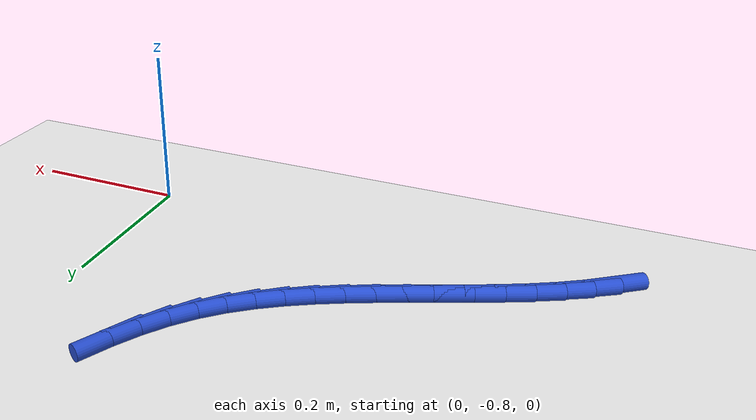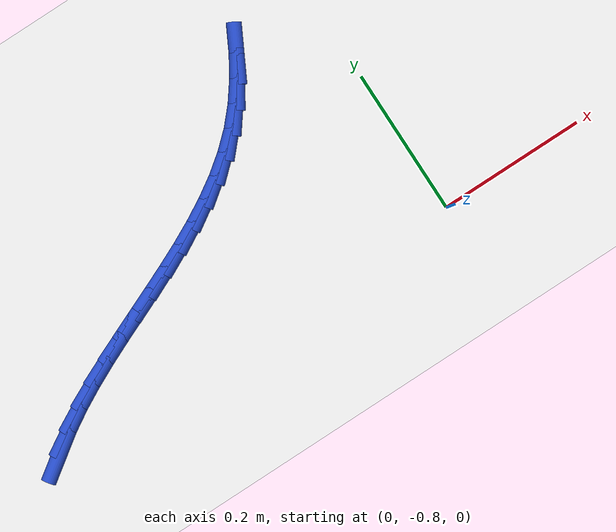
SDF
<sdf version="1.6">
 <world name="default">
  <model name="ground_plane">
   <static>1</static>
   <link name="link">
    <collision name="collision">
     <geometry><plane><normal>0 0 1</normal><size>100 100</size></plane></geometry>
     <surface><friction><ode><mu>100</mu><mu2>50</mu2></ode></friction></surface>
    </collision>
    <visual name="visual">
     <cast_shadows>0</cast_shadows>
     <geometry><plane><normal>0 0 1</normal><size>100 100</size></plane></geometry>
     <material>
      <script><uri>file://media/materials/scripts/gazebo.material</uri><name>Gazebo/WhiteGlow</name></script>
     </material>
    </visual>
   </link>
  </model>
  <model name="line">
   <link name="link_178">
    <pose>-0.586427026188906 -0.7925990657140356 0.01 0 1.57 0.6155680796641146</pose>
    <collision name="collision">
     <geometry><cylinder><radius>0.01</radius><length>0.08</length></cylinder></geometry>
    </collision>
    <visual name="visual">
     <material>
      <script><name>Gazebo/Blue</name><uri>file://media/materials/scripts/gazebo.material</uri></script>
     </material>
     <geometry><cylinder><radius>0.01</radius><length>0.08</length></cylinder></geometry>
    </visual>
   </link>
   <link name="link_179">
    <pose>-0.5599101429254029 -0.7738452825378274 0.01 0 1.57 0.5460522257350253</pose>
    <collision name="collision">
     <geometry><cylinder><radius>0.01</radius><length>0.08</length></cylinder></geometry>
    </collision>
    <visual name="visual">
     <material>
      <script><name>Gazebo/Blue</name><uri>file://media/materials/scripts/gazebo.material</uri></script>
     </material>
     <geometry><cylinder><radius>0.01</radius><length>0.08</length></cylinder></geometry>
    </visual>
   </link>
   <link name="link_180">
    <pose>-0.5317330165967386 -0.7567224214075127 0.01 0 1.57 0.4913295874738149</pose>
    <collision name="collision">
     <geometry><cylinder><radius>0.01</radius><length>0.08</length></cylinder></geometry>
    </collision>
    <visual name="visual">
     <material>
      <script><name>Gazebo/Blue</name><uri>file://media/materials/scripts/gazebo.material</uri></script>
     </material>
     <geometry><cylinder><radius>0.01</radius><length>0.08</length></cylinder></geometry>
    </visual>
   </link>
   <link name="link_181">
    <pose>-0.5022044251740833 -0.7409217542656988 0.01 0 1.57 0.45051943797085126</pose>
    <collision name="collision">
     <geometry><cylinder><radius>0.01</radius><length>0.08</length></cylinder></geometry>
    </collision>
    <visual name="visual">
     <material>
      <script><name>Gazebo/Blue</name><uri>file://media/materials/scripts/gazebo.material</uri></script>
     </material>
     <geometry><cylinder><radius>0.01</radius><length>0.08</length></cylinder></geometry>
    </visual>
   </link>
   <link name="link_182">
    <pose>-0.4716331466286077 -0.7261345530549934 0.01 0 1.57 0.4227245204594841</pose>
    <collision name="collision">
     <geometry><cylinder><radius>0.01</radius><length>0.08</length></cylinder></geometry>
    </collision>
    <visual name="visual">
     <material>
      <script><name>Gazebo/Blue</name><uri>file://media/materials/scripts/gazebo.material</uri></script>
     </material>
     <geometry><cylinder><radius>0.01</radius><length>0.08</length></cylinder></geometry>
    </visual>
   </link>
   <link name="link_183">
    <pose>-0.4403279589314819 -0.712052089718004 0.01 0 1.57 0.4072256890072384</pose>
    <collision name="collision">
     <geometry><cylinder><radius>0.01</radius><length>0.08</length></cylinder></geometry>
    </collision>
    <visual name="visual">
     <material>
      <script><name>Gazebo/Blue</name><uri>file://media/materials/scripts/gazebo.material</uri></script>
     </material>
     <geometry><cylinder><radius>0.01</radius><length>0.08</length></cylinder></geometry>
    </visual>
   </link>
   <link name="link_184">
    <pose>-0.40859764005387755 -0.6983656361973386 0.01 0 1.57 0.4035805160098838</pose>
    <collision name="collision">
     <geometry><cylinder><radius>0.01</radius><length>0.08</length></cylinder></geometry>
    </collision>
    <visual name="visual">
     <material>
      <script><name>Gazebo/Blue</name><uri>file://media/materials/scripts/gazebo.material</uri></script>
     </material>
     <geometry><cylinder><radius>0.01</radius><length>0.08</length></cylinder></geometry>
    </visual>
   </link>
   <link name="link_185">
    <pose>-0.37675096796696445 -0.6847664644356041 0.01 0 1.57 0.4116646971206037</pose>
    <collision name="collision">
     <geometry><cylinder><radius>0.01</radius><length>0.08</length></cylinder></geometry>
    </collision>
    <visual name="visual">
     <material>
      <script><name>Gazebo/Blue</name><uri>file://media/materials/scripts/gazebo.material</uri></script>
     </material>
     <geometry><cylinder><radius>0.01</radius><length>0.08</length></cylinder></geometry>
    </visual>
   </link>
   <link name="link_186">
    <pose>-0.3450967206419132 -0.6709458463754085 0.01 0 1.57 0.43167886046166826</pose>
    <collision name="collision">
     <geometry><cylinder><radius>0.01</radius><length>0.08</length></cylinder></geometry>
    </collision>
    <visual name="visual">
     <material>
      <script><name>Gazebo/Blue</name><uri>file://media/materials/scripts/gazebo.material</uri></script>
     </material>
     <geometry><cylinder><radius>0.01</radius><length>0.08</length></cylinder></geometry>
    </visual>
   </link>
   <link name="link_187">
    <pose>-0.31394367604989454 -0.6565950539593592 0.01 0 1.57 0.4641263618729676</pose>
    <collision name="collision">
     <geometry><cylinder><radius>0.01</radius><length>0.08</length></cylinder></geometry>
    </collision>
    <visual name="visual">
     <material>
      <script><name>Gazebo/Blue</name><uri>file://media/materials/scripts/gazebo.material</uri></script>
     </material>
     <geometry><cylinder><radius>0.01</radius><length>0.08</length></cylinder></geometry>
    </visual>
   </link>
   <link name="link_188">
    <pose>-0.2836006121620787 -0.6414053591300638 0.01 0 1.57 0.5097512030820057</pose>
    <collision name="collision">
     <geometry><cylinder><radius>0.01</radius><length>0.08</length></cylinder></geometry>
    </collision>
    <visual name="visual">
     <material>
      <script><name>Gazebo/Blue</name><uri>file://media/materials/scripts/gazebo.material</uri></script>
     </material>
     <geometry><cylinder><radius>0.01</radius><length>0.08</length></cylinder></geometry>
    </visual>
   </link>
   <link name="link_189">
    <pose>-0.25437630694963576 -0.6250680338301293 0.01 0 1.57 0.5694089413110417</pose>
    <collision name="collision">
     <geometry><cylinder><radius>0.01</radius><length>0.08</length></cylinder></geometry>
    </collision>
    <visual name="visual">
     <material>
      <script><name>Gazebo/Blue</name><uri>file://media/materials/scripts/gazebo.material</uri></script>
     </material>
     <geometry><cylinder><radius>0.01</radius><length>0.08</length></cylinder></geometry>
    </visual>
   </link>
   <link name="link_190">
    <pose>-0.22657953838373748 -0.6072743500021641 0.01 0 1.57 0.643830843783704</pose>
    <collision name="collision">
     <geometry><cylinder><radius>0.01</radius><length>0.08</length></cylinder></geometry>
    </collision>
    <visual name="visual">
     <material>
      <script><name>Gazebo/Blue</name><uri>file://media/materials/scripts/gazebo.material</uri></script>
     </material>
     <geometry><cylinder><radius>0.01</radius><length>0.08</length></cylinder></geometry>
    </visual>
   </link>
   <link name="link_191">
    <pose>-0.20051908443555377 -0.5877155795887755 0.01 0 1.57 0.7332465141427602</pose>
    <collision name="collision">
     <geometry><cylinder><radius>0.01</radius><length>0.08</length></cylinder></geometry>
    </collision>
    <visual name="visual">
     <material>
      <script><name>Gazebo/Blue</name><uri>file://media/materials/scripts/gazebo.material</uri></script>
     </material>
     <geometry><cylinder><radius>0.01</radius><length>0.08</length></cylinder></geometry>
    </visual>
   </link>
   <link name="link_192">
    <pose>-0.17650372307625523 -0.5660829945325708 0.01 0 1.57 0.8341767041618456</pose>
    <collision name="collision">
     <geometry><cylinder><radius>0.01</radius><length>0.08</length></cylinder></geometry>
    </collision>
    <visual name="visual">
     <material>
      <script><name>Gazebo/Blue</name><uri>file://media/materials/scripts/gazebo.material</uri></script>
     </material>
     <geometry><cylinder><radius>0.01</radius><length>0.08</length></cylinder></geometry>
    </visual>
   </link>
   <link name="link_193">
    <pose>-0.15478551514201475 -0.542135512528125 0.01 0 1.57 0.929495589470163</pose>
    <collision name="collision">
     <geometry><cylinder><radius>0.01</radius><length>0.08</length></cylinder></geometry>
    </collision>
    <visual name="visual">
     <material>
      <script><name>Gazebo/Blue</name><uri>file://media/materials/scripts/gazebo.material</uri></script>
     </material>
     <geometry><cylinder><radius>0.01</radius><length>0.08</length></cylinder></geometry>
    </visual>
   </link>
   <link name="link_194">
    <pose>-0.13528980523152268 -0.5160217212624302 0.01 0 1.57 1.0129823640343436</pose>
    <collision name="collision">
     <geometry><cylinder><radius>0.01</radius><length>0.08</length></cylinder></geometry>
    </collision>
    <visual name="visual">
     <material>
      <script><name>Gazebo/Blue</name><uri>file://media/materials/scripts/gazebo.material</uri></script>
     </material>
     <geometry><cylinder><radius>0.01</radius><length>0.08</length></cylinder></geometry>
    </visual>
   </link>
   <link name="link_195">
    <pose>-0.11782519185519609 -0.48802944988682323 0.01 0 1.57 1.084858408427151</pose>
    <collision name="collision">
     <geometry><cylinder><radius>0.01</radius><length>0.08</length></cylinder></geometry>
    </collision>
    <visual name="visual">
     <material>
      <script><name>Gazebo/Blue</name><uri>file://media/materials/scripts/gazebo.material</uri></script>
     </material>
     <geometry><cylinder><radius>0.01</radius><length>0.08</length></cylinder></geometry>
    </visual>
   </link>
  </model>
 </world>
</sdf>
